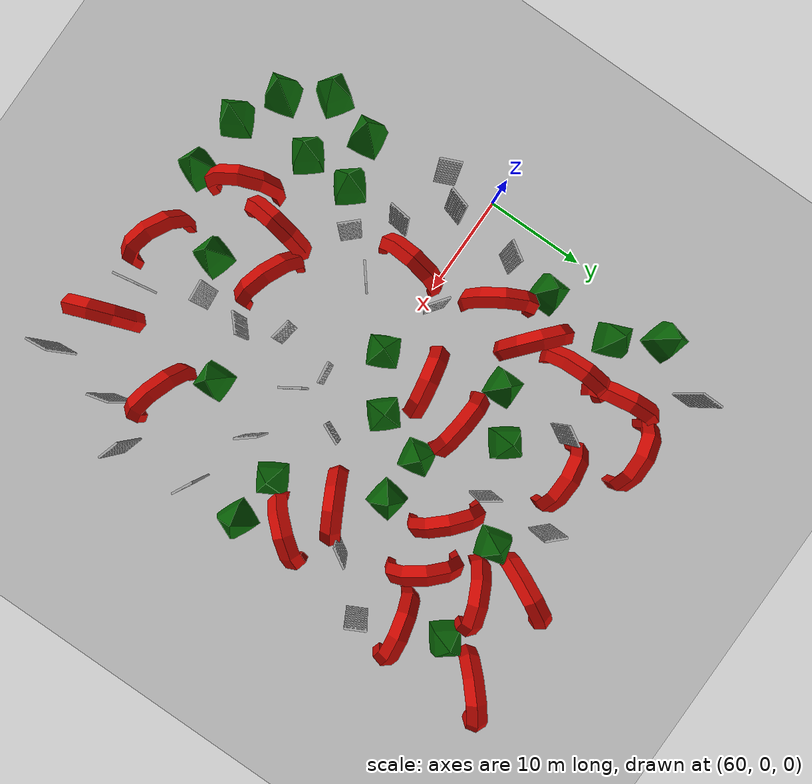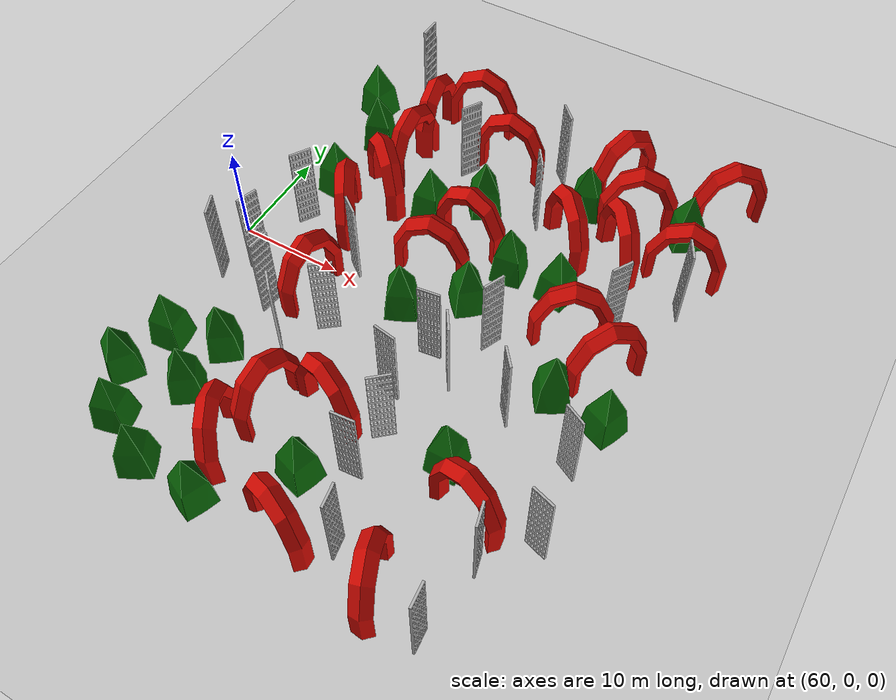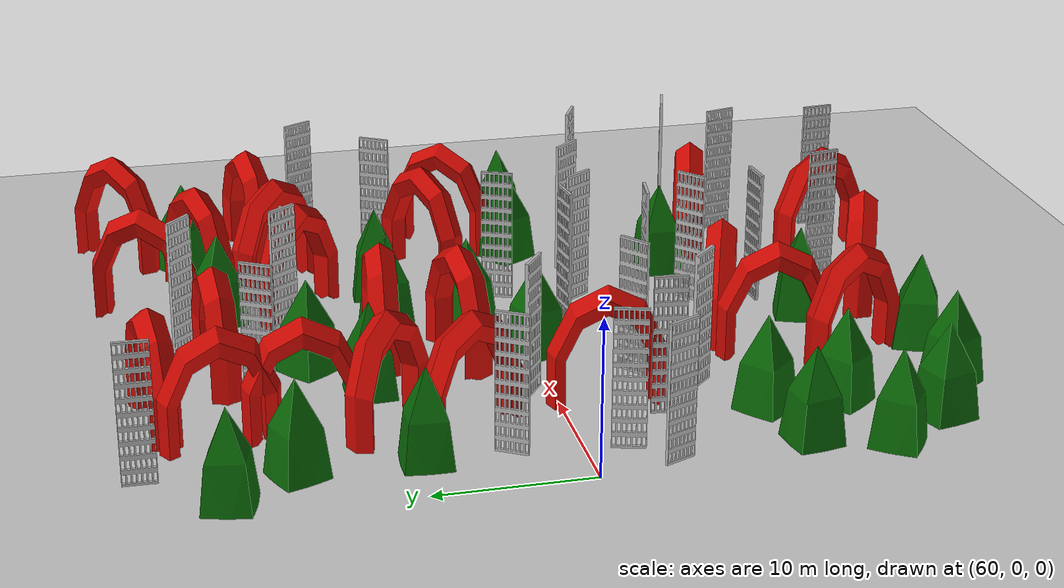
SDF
<sdf version="1.4">
 <world name="default">
  <model name="ground_plane">
   <static>1</static>
   <link name="link">
    <collision name="collision">
     <geometry><plane><normal>0 0 1</normal><size>1000 1000</size></plane></geometry>
     <surface>
      <contact><collide_bitmask>65535</collide_bitmask></contact>
      <friction><ode><mu>100</mu><mu2>50</mu2></ode></friction>
     </surface>
    </collision>
    <visual name="visual">
     <cast_shadows>0</cast_shadows>
     <geometry><plane><normal>0 0 1</normal><size>1000 1000</size></plane></geometry>
    </visual>
   </link>
  </model>
  <include><uri>model://sun</uri></include>
  <include>
   <name>mixedSimple Pyramid13</name>
   <uri>model://Simple Pyramid</uri>
   <pose>60.431626319885254 -18.28468418121338 0 0 0 0.17253654388</pose>
   <static>true</static>
  </include>
  <include>
   <name>mixedSimple Pyramid20</name>
   <uri>model://Simple Pyramid</uri>
   <pose>63.23489570617676 -22.43097233772278 0 0 0 4.19147572748</pose>
   <static>true</static>
  </include>
  <include>
   <name>mixedSimple Pyramid21</name>
   <uri>model://Simple Pyramid</uri>
   <pose>61.869550704956055 -13.49068832397461 0 0 0 2.50524815073</pose>
   <static>true</static>
  </include>
  <include>
   <name>mixedfence_high22</name>
   <uri>model://fence_high</uri>
   <pose>61.36879062652588 -6.03217887878418 0 0 0 0.414135514197</pose>
   <static>true</static>
  </include>
  <include>
   <name>mixedfence_high23</name>
   <uri>model://fence_high</uri>
   <pose>63.64920616149902 -1.5768756866455078 0 0 0 2.85809833731</pose>
   <static>true</static>
  </include>
  <include>
   <name>mixedfence_high24</name>
   <uri>model://fence_high</uri>
   <pose>63.5390682220459 3.426912307739258 0 0 0 5.73406726587</pose>
   <static>true</static>
  </include>
  <include>
   <name>mixedSimple Pyramid25</name>
   <uri>model://Simple Pyramid</uri>
   <pose>61.610965728759766 21.105548858642578 0 0 0 2.10641255831</pose>
   <static>true</static>
  </include>
  <include>
   <name>mixedSimple Pyramid26</name>
   <uri>model://Simple Pyramid</uri>
   <pose>67.65835571289062 -24.772558212280273 0 0 0 6.00682350142</pose>
   <static>true</static>
  </include>
  <include>
   <name>mixedSimple Pyramid27</name>
   <uri>model://Simple Pyramid</uri>
   <pose>66.60265731811523 -17.18649673461914 0 0 0 6.15441874767</pose>
   <static>true</static>
  </include>
  <include>
   <name>mixedSimple Pyramid28</name>
   <uri>model://Simple Pyramid</uri>
   <pose>66.7005500793457 -12.182454109191895 0 0 0 3.03433992994</pose>
   <static>true</static>
  </include>
  <include>
   <name>mixedfence_high29</name>
   <uri>model://fence_high</uri>
   <pose>67.03730201721191 -7.18879508972168 0 0 0 6.17127113432</pose>
   <static>true</static>
  </include>
  <include>
   <name>mixedSimple Pyramid30</name>
   <uri>model://Simple Pyramid</uri>
   <pose>64.23334121704102 9.359809875488281 0 0 0 3.87130460074</pose>
   <static>true</static>
  </include>
  <include>
   <name>mixedSimple Pyramid31</name>
   <uri>model://Simple Pyramid</uri>
   <pose>64.30308532714844 16.886245727539062 0 0 0 2.73507676306</pose>
   <static>true</static>
  </include>
  <include>
   <name>mixedfence_high32</name>
   <uri>model://fence_high</uri>
   <pose>64.99499893188477 24.793140411376953 0 0 0 6.26696968051</pose>
   <static>true</static>
  </include>
  <include>
   <name>mixedSimple U33</name>
   <uri>model://Simple U</uri>
   <pose>69.6857967376709 -2.941974639892578 0 0 0 1.45040754766</pose>
   <static>true</static>
  </include>
  <include>
   <name>mixedfence_high34</name>
   <uri>model://fence_high</uri>
   <pose>70.94706916809082 1.901498794555664 0 0 0 4.08057383106</pose>
   <static>true</static>
  </include>
  <include>
   <name>mixedSimple U35</name>
   <uri>model://Simple U</uri>
   <pose>67.9042911529541 5.87535285949707 0 0 0 2.09654529085</pose>
   <static>true</static>
  </include>
  <include>
   <name>mixedSimple U36</name>
   <uri>model://Simple U</uri>
   <pose>69.04156112670898 10.749431610107422 0 0 0 2.42114007287</pose>
   <static>true</static>
  </include>
  <include>
   <name>mixedSimple U37</name>
   <uri>model://Simple U</uri>
   <pose>69.1780014038086 15.752571105957031 0 0 0 4.67959258347</pose>
   <static>true</static>
  </include>
  <include>
   <name>mixedSimple U38</name>
   <uri>model://Simple U</uri>
   <pose>68.9942455291748 20.754196166992188 0 0 0 1.67679674999</pose>
   <static>true</static>
  </include>
  <include>
   <name>mixedSimple Pyramid39</name>
   <uri>model://Simple Pyramid</uri>
   <pose>73.61554527282715 -24.951502591371536 0 0 0 1.96678132619</pose>
   <static>true</static>
  </include>
  <include>
   <name>mixedSimple U40</name>
   <uri>model://Simple U</uri>
   <pose>72.60266876220703 -20.050063610076904 0 0 0 2.01629408321</pose>
   <static>true</static>
  </include>
  <include>
   <name>mixedSimple U41</name>
   <uri>model://Simple U</uri>
   <pose>74.05137062072754 -15.259313583374023 0 0 0 4.57545823927</pose>
   <static>true</static>
  </include>
  <include>
   <name>mixedfence_high42</name>
   <uri>model://fence_high</uri>
   <pose>71.25839614868164 -10.114587783813477 0 0 0 0.764182931287</pose>
   <static>true</static>
  </include>
  <include>
   <name>mixedfence_high43</name>
   <uri>model://fence_high</uri>
   <pose>74.21930885314941 -5.062658309936523 0 0 0 2.243618091</pose>
   <static>true</static>
  </include>
  <include>
   <name>mixedSimple Pyramid44</name>
   <uri>model://Simple Pyramid</uri>
   <pose>74.04096984863281 10.985946655273438 0 0 0 3.9438476849</pose>
   <static>true</static>
  </include>
  <include>
   <name>mixedfence_high45</name>
   <uri>model://fence_high</uri>
   <pose>74.05504035949707 16.87708282470703 0 0 0 5.75877354846</pose>
   <static>true</static>
  </include>
  <include>
   <name>mixedSimple U46</name>
   <uri>model://Simple U</uri>
   <pose>72.45759391784668 24.367401123046875 0 0 0 0.136451337227</pose>
   <static>true</static>
  </include>
  <include>
   <name>mixedSimple Pyramid47</name>
   <uri>model://Simple Pyramid</uri>
   <pose>77.78875923156738 -0.45194244384765625 0 0 0 5.95318053153</pose>
   <static>true</static>
  </include>
  <include>
   <name>mixedSimple U48</name>
   <uri>model://Simple U</uri>
   <pose>77.98178291320801 4.549333572387695 0 0 0 0.186390739304</pose>
   <static>true</static>
  </include>
  <include>
   <name>mixedSimple U49</name>
   <uri>model://Simple U</uri>
   <pose>77.95903396606445 20.008991241455078 0 0 0 0.0707930417367</pose>
   <static>true</static>
  </include>
  <include>
   <name>mixedSimple U50</name>
   <uri>model://Simple U</uri>
   <pose>81.37838745117188 -23.946004033088684 0 0 0 5.90774600641</pose>
   <static>true</static>
  </include>
  <include>
   <name>mixedSimple Pyramid51</name>
   <uri>model://Simple Pyramid</uri>
   <pose>79.71161460876465 -18.976111888885498 0 0 0 0.484515501731</pose>
   <static>true</static>
  </include>
  <include>
   <name>mixedSimple U52</name>
   <uri>model://Simple U</uri>
   <pose>78.55118751525879 -13.068039894104004 0 0 0 2.78293355722</pose>
   <static>true</static>
  </include>
  <include>
   <name>mixedfence_high53</name>
   <uri>model://fence_high</uri>
   <pose>80.73258972167969 -8.563430786132812 0 0 0 4.55773825119</pose>
   <static>true</static>
  </include>
  <include>
   <name>mixedfence_high54</name>
   <uri>model://fence_high</uri>
   <pose>81.6451187133789 -3.6423206329345703 0 0 0 4.84681102954</pose>
   <static>true</static>
  </include>
  <include>
   <name>mixedSimple U55</name>
   <uri>model://Simple U</uri>
   <pose>79.42312622070312 9.342304229736328 0 0 0 6.1936318235</pose>
   <static>true</static>
  </include>
  <include>
   <name>mixedSimple Pyramid56</name>
   <uri>model://Simple Pyramid</uri>
   <pose>78.295654296875 14.218658447265625 0 0 0 1.43078757241</pose>
   <static>true</static>
  </include>
  <include>
   <name>mixedfence_high57</name>
   <uri>model://fence_high</uri>
   <pose>84.26757049560547 -16.904088020324707 0 0 0 1.66472214805</pose>
   <static>true</static>
  </include>
  <include>
   <name>mixedfence_high58</name>
   <uri>model://fence_high</uri>
   <pose>84.46066665649414 -11.902814865112305 0 0 0 2.29891937047</pose>
   <static>true</static>
  </include>
  <include>
   <name>mixedSimple Pyramid59</name>
   <uri>model://Simple Pyramid</uri>
   <pose>82.75128173828125 3.032135009765625 0 0 0 6.2251376964</pose>
   <static>true</static>
  </include>
  <include>
   <name>mixedSimple Pyramid60</name>
   <uri>model://Simple Pyramid</uri>
   <pose>84.27034759521484 8.09552001953125 0 0 0 2.5270846999</pose>
   <static>true</static>
  </include>
  <include>
   <name>mixedfence_high61</name>
   <uri>model://fence_high</uri>
   <pose>83.02408981323242 15.859367370605469 0 0 0 3.73993836127</pose>
   <static>true</static>
  </include>
  <include>
   <name>mixedfence_high62</name>
   <uri>model://fence_high</uri>
   <pose>82.34706497192383 22.41631317138672 0 0 0 3.92191938198</pose>
   <static>true</static>
  </include>
  <include>
   <name>mixedfence_high63</name>
   <uri>model://fence_high</uri>
   <pose>85.83025360107422 -21.658881187438965 0 0 0 3.31741074823</pose>
   <static>true</static>
  </include>
  <include>
   <name>mixedfence_high64</name>
   <uri>model://fence_high</uri>
   <pose>85.97997283935547 -6.144136428833008 0 0 0 0.584791006061</pose>
   <static>true</static>
  </include>
  <include>
   <name>mixedfence_high65</name>
   <uri>model://fence_high</uri>
   <pose>87.31541061401367 0.9781723022460938 0 0 0 2.72938728222</pose>
   <static>true</static>
  </include>
  <include>
   <name>mixedSimple U66</name>
   <uri>model://Simple U</uri>
   <pose>87.43560791015625 13.495365142822266 0 0 0 2.38188164985</pose>
   <static>true</static>
  </include>
  <include>
   <name>mixedSimple Pyramid67</name>
   <uri>model://Simple Pyramid</uri>
   <pose>87.02279663085938 18.86941146850586 0 0 0 4.19533769067</pose>
   <static>true</static>
  </include>
  <include>
   <name>mixedSimple U68</name>
   <uri>model://Simple U</uri>
   <pose>88.76330947875977 23.562026977539062 0 0 0 4.23085019607</pose>
   <static>true</static>
  </include>
  <include>
   <name>mixedSimple U69</name>
   <uri>model://Simple U</uri>
   <pose>90.12329483032227 -24.231783092021942 0 0 0 1.92570284449</pose>
   <static>true</static>
  </include>
  <include>
   <name>mixedSimple Pyramid70</name>
   <uri>model://Simple Pyramid</uri>
   <pose>89.4610481262207 -12.117773056030273 0 0 0 5.51453538425</pose>
   <static>true</static>
  </include>
  <include>
   <name>mixedfence_high71</name>
   <uri>model://fence_high</uri>
   <pose>91.9268798828125 -6.782184600830078 0 0 0 0.68154529814</pose>
   <static>true</static>
  </include>
  <include>
   <name>mixedSimple Pyramid72</name>
   <uri>model://Simple Pyramid</uri>
   <pose>89.2744026184082 7.998241424560547 0 0 0 0.632404342988</pose>
   <static>true</static>
  </include>
  <include>
   <name>mixedSimple U73</name>
   <uri>model://Simple U</uri>
   <pose>92.35869216918945 14.397193908691406 0 0 0 2.27934693682</pose>
   <static>true</static>
  </include>
  <include>
   <name>mixedSimple U74</name>
   <uri>model://Simple U</uri>
   <pose>91.9591064453125 19.695762634277344 0 0 0 0.391755587963</pose>
   <static>true</static>
  </include>
  <include>
   <name>mixedfence_high75</name>
   <uri>model://fence_high</uri>
   <pose>95.1146469116211 -24.60114935040474 0 0 0 3.23284584103</pose>
   <static>true</static>
  </include>
  <include>
   <name>mixedSimple U76</name>
   <uri>model://Simple U</uri>
   <pose>93.19325256347656 -15.452537536621094 0 0 0 2.86370314695</pose>
   <static>true</static>
  </include>
  <include>
   <name>mixedSimple Pyramid77</name>
   <uri>model://Simple Pyramid</uri>
   <pose>93.97762680053711 -2.216611862182617 0 0 0 6.04210341903</pose>
   <static>true</static>
  </include>
  <include>
   <name>mixedSimple U78</name>
   <uri>model://Simple U</uri>
   <pose>92.46309280395508 4.140485763549805 0 0 0 0.487528358337</pose>
   <static>true</static>
  </include>
  <include>
   <name>mixedfence_high79</name>
   <uri>model://fence_high</uri>
   <pose>95.90899658203125 7.770328521728516 0 0 0 2.61033600081</pose>
   <static>true</static>
  </include>
  <include>
   <name>mixedfence_high80</name>
   <uri>model://fence_high</uri>
   <pose>96.06568145751953 -19.551218509674072 0 0 0 0.246304409226</pose>
   <static>true</static>
  </include>
  <include>
   <name>mixedfence_high81</name>
   <uri>model://fence_high</uri>
   <pose>98.14481353759766 -14.723092079162598 0 0 0 4.42526316958</pose>
   <static>true</static>
  </include>
  <include>
   <name>mixedfence_high82</name>
   <uri>model://fence_high</uri>
   <pose>97.23254776000977 -7.356666564941406 0 0 0 4.25126863568</pose>
   <static>true</static>
  </include>
  <include>
   <name>mixedSimple Pyramid83</name>
   <uri>model://Simple Pyramid</uri>
   <pose>99.0380973815918 -2.688688278198242 0 0 0 5.09208108765</pose>
   <static>true</static>
  </include>
  <include>
   <name>mixedSimple U84</name>
   <uri>model://Simple U</uri>
   <pose>96.90836715698242 1.8405799865722656 0 0 0 4.02360566422</pose>
   <static>true</static>
  </include>
  <include>
   <name>mixedSimple U85</name>
   <uri>model://Simple U</uri>
   <pose>98.46069717407227 15.469467163085938 0 0 0 0.185331874135</pose>
   <static>true</static>
  </include>
  <include>
   <name>mixedSimple Pyramid86</name>
   <uri>model://Simple Pyramid</uri>
   <pose>96.93484115600586 20.2362060546875 0 0 0 6.15521523818</pose>
   <static>true</static>
  </include>
  <include>
   <name>mixedSimple U87</name>
   <uri>model://Simple U</uri>
   <pose>99.2684326171875 24.66388702392578 0 0 0 3.83806916787</pose>
   <static>true</static>
  </include>
  <include>
   <name>mixedfence_high88</name>
   <uri>model://fence_high</uri>
   <pose>99.97644805908203 10.686809539794922 0 0 0 0.475704571548</pose>
   <static>true</static>
  </include>
 </world>
</sdf>
